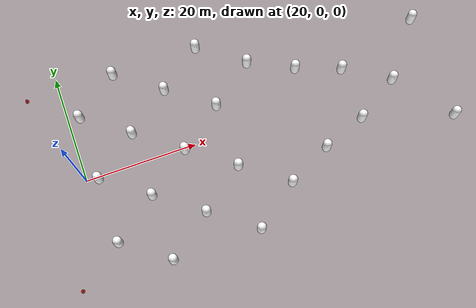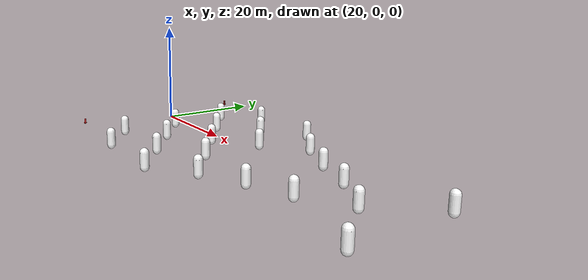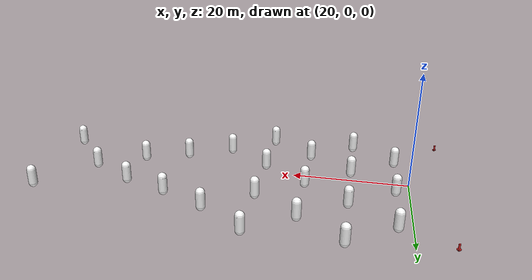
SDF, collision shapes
<?xml version="1.0" ?>
<sdf version="1.6">
  <model name="kaboat_2026_arena_5m">
    <static>true</static>

    <!-- Start Gate Red Left -->
    <include>
      <name>start_gate_red_left</name>
      <pose>14 18 0 0 0 0</pose>
      <uri>https://fuel.gazebosim.org/1.0/openrobotics/models/mb_marker_buoy_red</uri>
      <plugin name="vrx::PolyhedraBuoyancyDrag" filename="libPolyhedraBuoyancyDrag.so">
        <fluid_density>1000</fluid_density>
        <fluid_level>0.0</fluid_level>
        <linear_drag>25.0</linear_drag>
        <angular_drag>2.0</angular_drag>
        <buoyancy name="collision_outer">
          <link_name>link</link_name>
          <pose>0 0 -0.3 0 0 0</pose>
          <geometry>
            <cylinder>
              <radius>0.325</radius>
              <length>0.1</length>
            </cylinder>
          </geometry>
        </buoyancy>
        <wavefield>
          <topic>/vrx/wavefield/parameters</topic>
        </wavefield>
      </plugin>
    </include>

    <!-- Start Gate Red Right -->
    <include>
      <name>start_gate_red_right</name>
      <pose>14 -18 0 0 0 0</pose>
      <uri>https://fuel.gazebosim.org/1.0/openrobotics/models/mb_marker_buoy_red</uri>
      <plugin name="vrx::PolyhedraBuoyancyDrag" filename="libPolyhedraBuoyancyDrag.so">
        <fluid_density>1000</fluid_density>
        <fluid_level>0.0</fluid_level>
        <linear_drag>25.0</linear_drag>
        <angular_drag>2.0</angular_drag>
        <buoyancy name="collision_outer">
          <link_name>link</link_name>
          <pose>0 0 -0.3 0 0 0</pose>
          <geometry>
            <cylinder>
              <radius>0.325</radius>
              <length>0.1</length>
            </cylinder>
          </geometry>
        </buoyancy>
        <wavefield>
          <topic>/vrx/wavefield/parameters</topic>
        </wavefield>
      </plugin>
    </include>

    <!-- 1. First Section: Wider Zigzag Grid (x = 22 to 46, Spacing in y = 6m/12m) -->
    <!-- Column x=22 -->
    <include><name>basic_buoy_white_1</name><pose>22 -12 0 0 0 0</pose><uri>model://basic_buoy_white</uri></include>
    <include><name>basic_buoy_white_2</name><pose>22 0 0 0 0 0</pose><uri>model://basic_buoy_white</uri></include>
    <include><name>basic_buoy_white_3</name><pose>22 12 0 0 0 0</pose><uri>model://basic_buoy_white</uri></include>

    <!-- Column x=30 -->
    <include><name>basic_buoy_white_4</name><pose>30 -18 0 0 0 0</pose><uri>model://basic_buoy_white</uri></include>
    <include><name>basic_buoy_white_5</name><pose>30 -6 0 0 0 0</pose><uri>model://basic_buoy_white</uri></include>
    <include><name>basic_buoy_white_6</name><pose>30 6 0 0 0 0</pose><uri>model://basic_buoy_white</uri></include>
    <include><name>basic_buoy_white_7</name><pose>30 18 0 0 0 0</pose><uri>model://basic_buoy_white</uri></include>

    <!-- Column x=38 -->
    <include><name>basic_buoy_white_8</name><pose>38 -12 0 0 0 0</pose><uri>model://basic_buoy_white</uri></include>
    <include><name>basic_buoy_white_9</name><pose>38 0 0 0 0 0</pose><uri>model://basic_buoy_white</uri></include>
    <include><name>basic_buoy_white_10</name><pose>38 12 0 0 0 0</pose><uri>model://basic_buoy_white</uri></include>

    <!-- Column x=46 -->
    <include><name>basic_buoy_white_11</name><pose>46 -18 0 0 0 0</pose><uri>model://basic_buoy_white</uri></include>
    <include><name>basic_buoy_white_12</name><pose>46 -6 0 0 0 0</pose><uri>model://basic_buoy_white</uri></include>
    <include><name>basic_buoy_white_13</name><pose>46 6 0 0 0 0</pose><uri>model://basic_buoy_white</uri></include>
    <include><name>basic_buoy_white_14</name><pose>46 18 0 0 0 0</pose><uri>model://basic_buoy_white</uri></include>

    <!-- 2. Second Section: Slalom Gates & Single Buoys (x = 54 to 86) -->
    <!-- Column x=54 (Wide Gate) -->
    <include><name>basic_buoy_white_15</name><pose>54 -12 0 0 0 0</pose><uri>model://basic_buoy_white</uri></include>
    <include><name>basic_buoy_white_16</name><pose>54 12 0 0 0 0</pose><uri>model://basic_buoy_white</uri></include>

    <!-- Column x=62 (Medium Gate) -->
    <include><name>basic_buoy_white_17</name><pose>62 -8 0 0 0 0</pose><uri>model://basic_buoy_white</uri></include>
    <include><name>basic_buoy_white_18</name><pose>62 8 0 0 0 0</pose><uri>model://basic_buoy_white</uri></include>

    <!-- Column x=70 (Narrow Gate) -->
    <include><name>basic_buoy_white_19</name><pose>70 -5 0 0 0 0</pose><uri>model://basic_buoy_white</uri></include>
    <include><name>basic_buoy_white_20</name><pose>70 5 0 0 0 0</pose><uri>model://basic_buoy_white</uri></include>

    <!-- Column x=78 (Center Single Obstacle / Slalom Buoy) -->
    <include><name>basic_buoy_white_21</name><pose>78 0 0 0 0 0</pose><uri>model://basic_buoy_white</uri></include>

    <!-- Column x=86 (Exit Gate) -->
    <include><name>basic_buoy_white_22</name><pose>86 -10 0 0 0 0</pose><uri>model://basic_buoy_white</uri></include>
    <include><name>basic_buoy_white_23</name><pose>86 10 0 0 0 0</pose><uri>model://basic_buoy_white</uri></include>

  </model>
</sdf>

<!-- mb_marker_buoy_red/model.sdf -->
<sdf version="1.6">
  <model name="mb_marker_buoy_red">
    <link name="link">
      <inertial>
        <pose>0 0 -2 0 0 0</pose>
        <!-- Mass determined based on buoyancy geometry so object
             floats at mid-point of sphere -->
        <mass>20</mass>
        <!-- Mark only - based on cylinder -->
        <inertia>
          <ixx>1.0</ixx>
          <ixy>0</ixy>
          <ixz>0</ixz>
          <iyy>1.0</iyy>
          <iyz>0</iyz>
          <izz>0.1</izz>
        </inertia>
      </inertial>
      <collision name="collision_inner">
        <pose>0 -0.02 0.02 0 0 0</pose>
        <geometry>
          <cylinder>
            <radius>0.15</radius>
            <length>1.15</length>
          </cylinder>
        </geometry>
      </collision>
      <collision name="collision_outer">
        <pose>0 0 -0.3 0 0 0</pose>
        <geometry>
          <cylinder>
            <radius>0.325</radius>
            <length>0.1</length>
          </cylinder>
        </geometry>
      </collision>
      <visual name="visual">
        <pose>0 0 0 1.57079 0 0</pose>
        <geometry>
	        <mesh><uri>model://mb_marker_buoy_red/meshes/mb_marker_buoy.dae</uri></mesh>
        </geometry>
        <material>
          <script>
            <uri>model://mb_marker_buoy_red/materials/scripts/mb_marker_buoy.material</uri>
            <name>mb_marker_buoy/Red</name>
          </script>
        </material>
      </visual>
    </link>
    <plugin name="BuoyancyPlugin" filename="libbuoyancy_gazebo_plugin.so">
      <wave_model>ocean_waves</wave_model>
      <fluid_density>1000</fluid_density>
      <fluid_level>0.0</fluid_level>
      <linear_drag>25.0</linear_drag>
      <angular_drag>2.0</angular_drag>
      <buoyancy name="buoyancy_sphere">
        <link_name>link</link_name>
        <pose>0 0 -0.12 0 0 0</pose>
        <geometry>
          <sphere>
            <radius>0.325</radius>
          </sphere>
        </geometry>
      </buoyancy>
    </plugin>
  </model>
</sdf>

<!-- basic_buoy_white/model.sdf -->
<sdf version="1.7">
  <model name="basic_buoy_white">
    <link name="link">
      <inertial>
        <pose>0 0 -0.5 0 0 0</pose>
        <mass>2500.0</mass>
        <inertia>
          <ixx>1000.0</ixx>
          <iyy>1000.0</iyy>
          <izz>500.0</izz>
        </inertia>
      </inertial>

      <collision name="collision">
        <geometry>
          <capsule>
            <radius>0.8</radius>
            <length>2.6</length>
          </capsule>
        </geometry>
      </collision>

      <visual name="visual">
        <geometry>
          <capsule>
            <radius>0.8</radius>
            <length>2.6</length>
          </capsule>
        </geometry>
        <material>
          <ambient>1.0 1.0 1.0 1.0</ambient>
          <diffuse>1.0 1.0 1.0 1.0</diffuse>
          <specular>0.5 0.5 0.5 1.0</specular>
        </material>
      </visual>
    </link>

    <plugin name="vrx::PolyhedraBuoyancyDrag" filename="libPolyhedraBuoyancyDrag.so">
      <fluid_density>1000</fluid_density>
      <fluid_level>0.0</fluid_level>
      <linear_drag>25.0</linear_drag>
      <angular_drag>2.0</angular_drag>
      <buoyancy name="collision_outer">
        <link_name>link</link_name>
        <pose>0 0 -0.3 0 0 0</pose>
        <geometry>
          <cylinder>
            <radius>0.8</radius>
            <length>2.6</length>
          </cylinder>
        </geometry>
      </buoyancy>
      <wavefield>
        <topic>/vrx/wavefield/parameters</topic>
      </wavefield>
    </plugin>
  </model>
</sdf>
